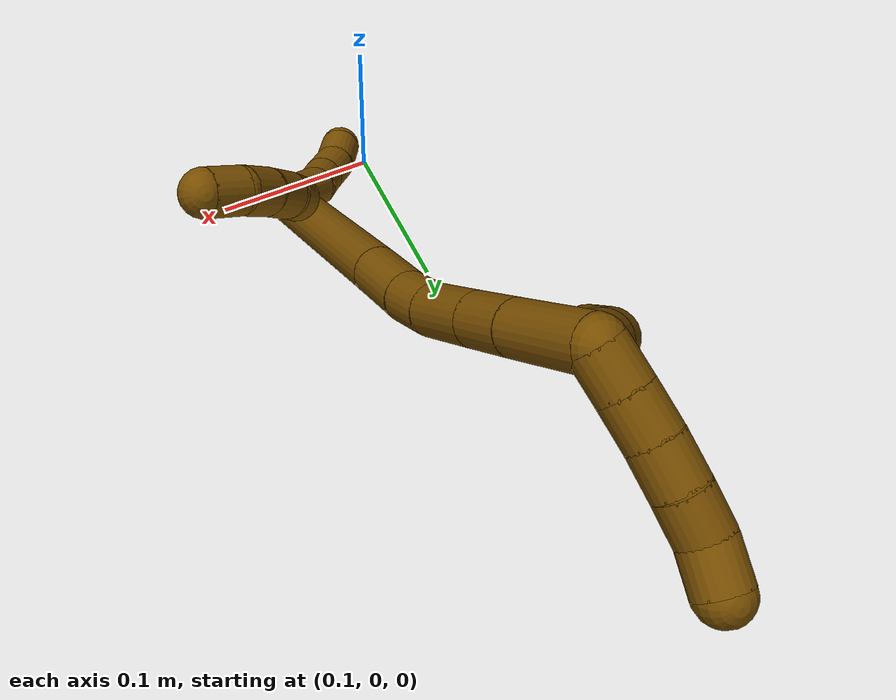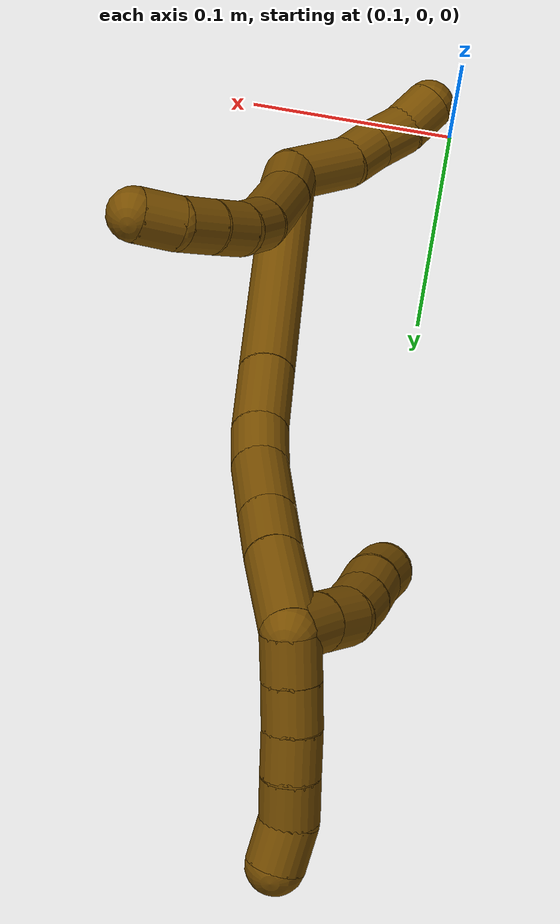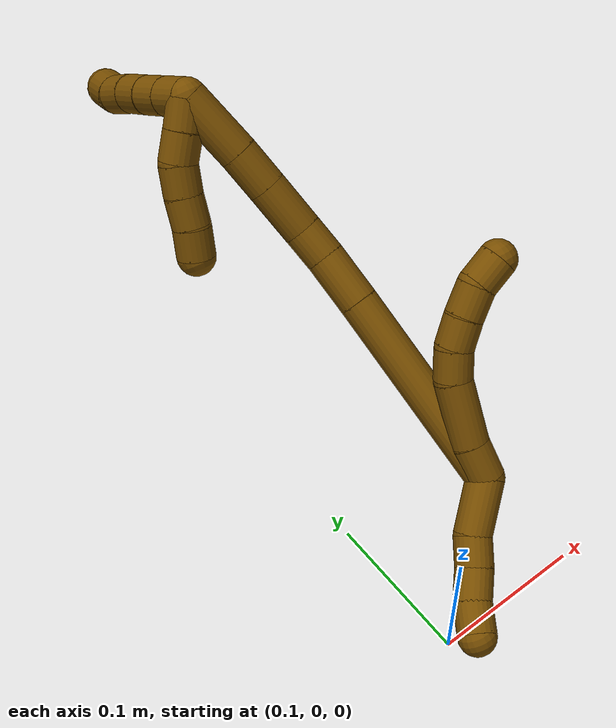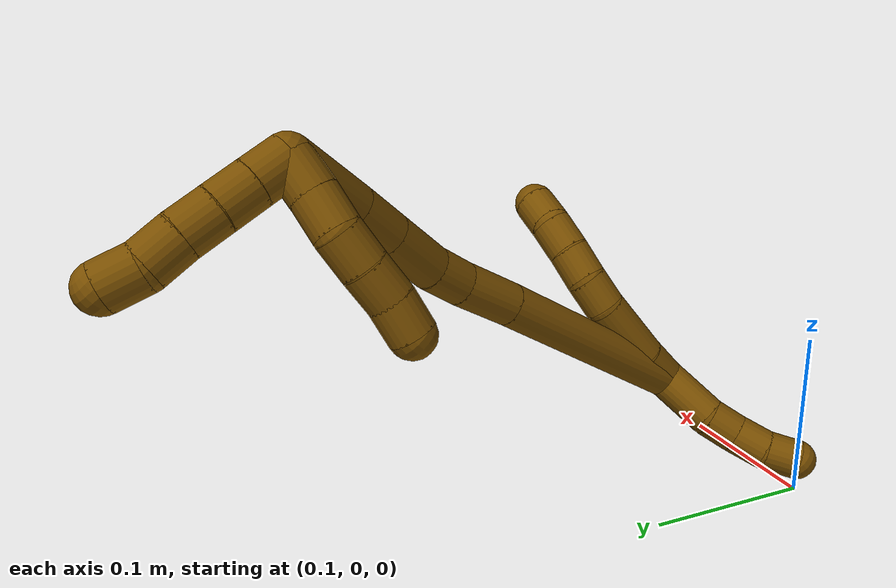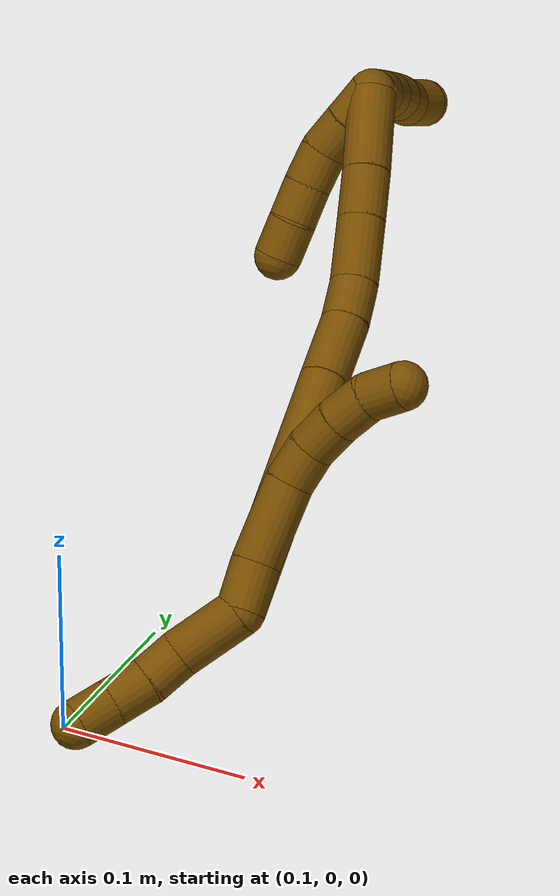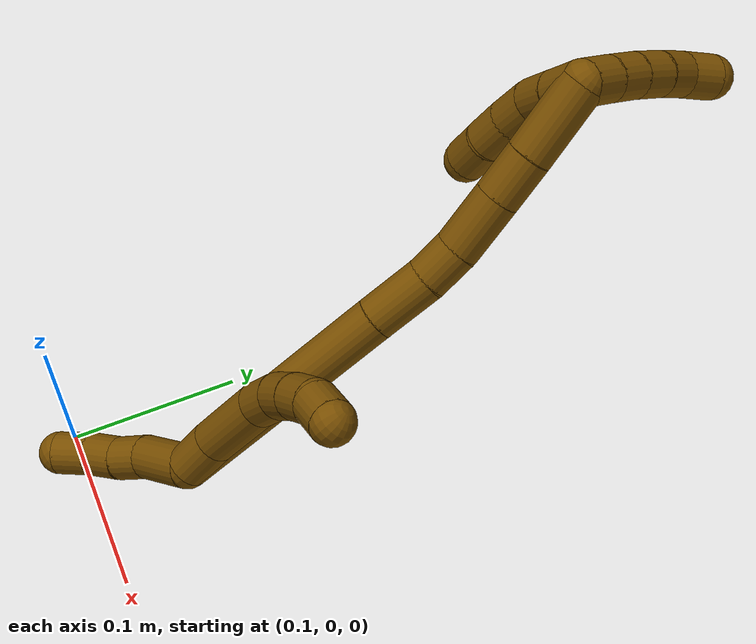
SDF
<sdf version="1.7">
 <world name="default">
  <model name="12">
   <static>0</static>
   <link name="12">
    <collision name="collision-cylinder-e_1_2_8">
     <pose>-0.000613 -6.5e-05 0.012587 0.005199 -0.048665 -0.000127</pose>
     <geometry><cylinder><radius>0.0125</radius><length>0.025204</length></cylinder></geometry>
     <surface>
      <friction><ode><mu>1.16</mu><mu2>1.16</mu2><slip1>0</slip1><slip2>0</slip2></ode></friction>
      <contact><ode><kp>1e+06</kp><kd>1</kd><max_vel>0</max_vel><min_depth>0.001</min_depth></ode></contact>
     </surface>
    </collision>
    <visual name="visual-cylinder-e_1_2_8">
     <pose>-0.000613 -6.5e-05 0.012587 0.005199 -0.048665 -0.000127</pose>
     <geometry><cylinder><radius>0.0125</radius><length>0.025204</length></cylinder></geometry>
     <material><ambient>0.466667 0.301961 0 1</ambient></material>
    </visual>
    <collision name="collision-cylinder-e_2_8_9">
     <pose>0.00088 -0.001763 0.046685 0.075729 0.097316 0.003689</pose>
     <geometry><cylinder><radius>0.0125</radius><length>0.043353</length></cylinder></geometry>
     <surface>
      <friction><ode><mu>1.16</mu><mu2>1.16</mu2><slip1>0</slip1><slip2>0</slip2></ode></friction>
      <contact><ode><kp>1e+06</kp><kd>1</kd><max_vel>0</max_vel><min_depth>0.001</min_depth></ode></contact>
     </surface>
    </collision>
    <visual name="visual-cylinder-e_2_8_9">
     <pose>0.00088 -0.001763 0.046685 0.075729 0.097316 0.003689</pose>
     <geometry><cylinder><radius>0.0125</radius><length>0.043353</length></cylinder></geometry>
     <material><ambient>0.466667 0.301961 0 1</ambient></material>
    </visual>
    <collision name="collision-cylinder-e_3_9_10">
     <pose>0.006529 -0.00516 0.077675 0.184057 0.352159 0.032838</pose>
     <geometry><cylinder><radius>0.0125</radius><length>0.020542</length></cylinder></geometry>
     <surface>
      <friction><ode><mu>1.16</mu><mu2>1.16</mu2><slip1>0</slip1><slip2>0</slip2></ode></friction>
      <contact><ode><kp>1e+06</kp><kd>1</kd><max_vel>0</max_vel><min_depth>0.001</min_depth></ode></contact>
     </surface>
    </collision>
    <visual name="visual-cylinder-e_3_9_10">
     <pose>0.006529 -0.00516 0.077675 0.184057 0.352159 0.032838</pose>
     <geometry><cylinder><radius>0.0125</radius><length>0.020542</length></cylinder></geometry>
     <material><ambient>0.466667 0.301961 0 1</ambient></material>
    </visual>
    <collision name="collision-cylinder-e_4_10_11">
     <pose>0.015863 -0.009165 0.095028 0.277187 0.615672 0.08864</pose>
     <geometry><cylinder><radius>0.0125</radius><length>0.020058</length></cylinder></geometry>
     <surface>
      <friction><ode><mu>1.16</mu><mu2>1.16</mu2><slip1>0</slip1><slip2>0</slip2></ode></friction>
      <contact><ode><kp>1e+06</kp><kd>1</kd><max_vel>0</max_vel><min_depth>0.001</min_depth></ode></contact>
     </surface>
    </collision>
    <visual name="visual-cylinder-e_4_10_11">
     <pose>0.015863 -0.009165 0.095028 0.277187 0.615672 0.08864</pose>
     <geometry><cylinder><radius>0.0125</radius><length>0.020058</length></cylinder></geometry>
     <material><ambient>0.466667 0.301961 0 1</ambient></material>
    </visual>
    <collision name="collision-cylinder-e_5_11_12">
     <pose>0.028503 -0.0133 0.110339 0.249484 0.728575 0.095553</pose>
     <geometry><cylinder><radius>0.0125</radius><length>0.02057</length></cylinder></geometry>
     <surface>
      <friction><ode><mu>1.16</mu><mu2>1.16</mu2><slip1>0</slip1><slip2>0</slip2></ode></friction>
      <contact><ode><kp>1e+06</kp><kd>1</kd><max_vel>0</max_vel><min_depth>0.001</min_depth></ode></contact>
     </surface>
    </collision>
    <visual name="visual-cylinder-e_5_11_12">
     <pose>0.028503 -0.0133 0.110339 0.249484 0.728575 0.095553</pose>
     <geometry><cylinder><radius>0.0125</radius><length>0.02057</length></cylinder></geometry>
     <material><ambient>0.466667 0.301961 0 1</ambient></material>
    </visual>
    <collision name="collision-cylinder-e_6_12_6">
     <pose>0.044268 -0.016526 0.122408 0.279957 1.07527 0.167622</pose>
     <geometry><cylinder><radius>0.0125</radius><length>0.020274</length></cylinder></geometry>
     <surface>
      <friction><ode><mu>1.16</mu><mu2>1.16</mu2><slip1>0</slip1><slip2>0</slip2></ode></friction>
      <contact><ode><kp>1e+06</kp><kd>1</kd><max_vel>0</max_vel><min_depth>0.001</min_depth></ode></contact>
     </surface>
    </collision>
    <visual name="visual-cylinder-e_6_12_6">
     <pose>0.044268 -0.016526 0.122408 0.279957 1.07527 0.167622</pose>
     <geometry><cylinder><radius>0.0125</radius><length>0.020274</length></cylinder></geometry>
     <material><ambient>0.466667 0.301961 0 1</ambient></material>
    </visual>
    <collision name="collision-cylinder-e_1_2_13">
     <pose>-0.011664 -0.001041 -0.014461 3.06971 -0.677467 -2.93817</pose>
     <geometry><cylinder><radius>0.0125</radius><length>0.037216</length></cylinder></geometry>
     <surface>
      <friction><ode><mu>1.16</mu><mu2>1.16</mu2><slip1>0</slip1><slip2>0</slip2></ode></friction>
      <contact><ode><kp>1e+06</kp><kd>1</kd><max_vel>0</max_vel><min_depth>0.001</min_depth></ode></contact>
     </surface>
    </collision>
    <visual name="visual-cylinder-e_1_2_13">
     <pose>-0.011664 -0.001041 -0.014461 3.06971 -0.677467 -2.93817</pose>
     <geometry><cylinder><radius>0.0125</radius><length>0.037216</length></cylinder></geometry>
     <material><ambient>0.466667 0.301961 0 1</ambient></material>
    </visual>
    <collision name="collision-cylinder-e_2_13_14">
     <pose>-0.027704 -0.004393 -0.037752 2.88572 -0.447099 -2.11178</pose>
     <geometry><cylinder><radius>0.0125</radius><length>0.020243</length></cylinder></geometry>
     <surface>
      <friction><ode><mu>1.16</mu><mu2>1.16</mu2><slip1>0</slip1><slip2>0</slip2></ode></friction>
      <contact><ode><kp>1e+06</kp><kd>1</kd><max_vel>0</max_vel><min_depth>0.001</min_depth></ode></contact>
     </surface>
    </collision>
    <visual name="visual-cylinder-e_2_13_14">
     <pose>-0.027704 -0.004393 -0.037752 2.88572 -0.447099 -2.11178</pose>
     <geometry><cylinder><radius>0.0125</radius><length>0.020243</length></cylinder></geometry>
     <material><ambient>0.466667 0.301961 0 1</ambient></material>
    </visual>
    <collision name="collision-cylinder-e_3_14_15">
     <pose>-0.038021 -0.009781 -0.054925 2.78814 -0.588918 -2.0772</pose>
     <geometry><cylinder><radius>0.0125</radius><length>0.021391</length></cylinder></geometry>
     <surface>
      <friction><ode><mu>1.16</mu><mu2>1.16</mu2><slip1>0</slip1><slip2>0</slip2></ode></friction>
      <contact><ode><kp>1e+06</kp><kd>1</kd><max_vel>0</max_vel><min_depth>0.001</min_depth></ode></contact>
     </surface>
    </collision>
    <visual name="visual-cylinder-e_3_14_15">
     <pose>-0.038021 -0.009781 -0.054925 2.78814 -0.588918 -2.0772</pose>
     <geometry><cylinder><radius>0.0125</radius><length>0.021391</length></cylinder></geometry>
     <material><ambient>0.466667 0.301961 0 1</ambient></material>
    </visual>
    <collision name="collision-cylinder-e_4_15_5">
     <pose>-0.048418 -0.017899 -0.071429 2.58829 -0.43501 -1.32282</pose>
     <geometry><cylinder><radius>0.0125</radius><length>0.02115</length></cylinder></geometry>
     <surface>
      <friction><ode><mu>1.16</mu><mu2>1.16</mu2><slip1>0</slip1><slip2>0</slip2></ode></friction>
      <contact><ode><kp>1e+06</kp><kd>1</kd><max_vel>0</max_vel><min_depth>0.001</min_depth></ode></contact>
     </surface>
    </collision>
    <visual name="visual-cylinder-e_4_15_5">
     <pose>-0.048418 -0.017899 -0.071429 2.58829 -0.43501 -1.32282</pose>
     <geometry><cylinder><radius>0.0125</radius><length>0.02115</length></cylinder></geometry>
     <material><ambient>0.466667 0.301961 0 1</ambient></material>
    </visual>
    <collision name="collision-cylinder-e_1_2_16">
     <pose>-0.01048 0.017856 0.064635 -0.269531 -0.155029 0.021061</pose>
     <geometry><cylinder><radius>0.0125</radius><length>0.135739</length></cylinder></geometry>
     <surface>
      <friction><ode><mu>1.16</mu><mu2>1.16</mu2><slip1>0</slip1><slip2>0</slip2></ode></friction>
      <contact><ode><kp>1e+06</kp><kd>1</kd><max_vel>0</max_vel><min_depth>0.001</min_depth></ode></contact>
     </surface>
    </collision>
    <visual name="visual-cylinder-e_1_2_16">
     <pose>-0.01048 0.017856 0.064635 -0.269531 -0.155029 0.021061</pose>
     <geometry><cylinder><radius>0.0125</radius><length>0.135739</length></cylinder></geometry>
     <material><ambient>0.466667 0.301961 0 1</ambient></material>
    </visual>
    <collision name="collision-cylinder-e_2_16_17">
     <pose>-0.02378 0.040718 0.14575 -0.294939 -0.162295 0.02416</pose>
     <geometry><cylinder><radius>0.0125</radius><length>0.034908</length></cylinder></geometry>
     <surface>
      <friction><ode><mu>1.16</mu><mu2>1.16</mu2><slip1>0</slip1><slip2>0</slip2></ode></friction>
      <contact><ode><kp>1e+06</kp><kd>1</kd><max_vel>0</max_vel><min_depth>0.001</min_depth></ode></contact>
     </surface>
    </collision>
    <visual name="visual-cylinder-e_2_16_17">
     <pose>-0.02378 0.040718 0.14575 -0.294939 -0.162295 0.02416</pose>
     <geometry><cylinder><radius>0.0125</radius><length>0.034908</length></cylinder></geometry>
     <material><ambient>0.466667 0.301961 0 1</ambient></material>
    </visual>
    <collision name="collision-cylinder-e_3_17_18">
     <pose>-0.029292 0.048044 0.172952 -0.213008 -0.240709 0.025857</pose>
     <geometry><cylinder><radius>0.0125</radius><length>0.022589</length></cylinder></geometry>
     <surface>
      <friction><ode><mu>1.16</mu><mu2>1.16</mu2><slip1>0</slip1><slip2>0</slip2></ode></friction>
      <contact><ode><kp>1e+06</kp><kd>1</kd><max_vel>0</max_vel><min_depth>0.001</min_depth></ode></contact>
     </surface>
    </collision>
    <visual name="visual-cylinder-e_3_17_18">
     <pose>-0.029292 0.048044 0.172952 -0.213008 -0.240709 0.025857</pose>
     <geometry><cylinder><radius>0.0125</radius><length>0.022589</length></cylinder></geometry>
     <material><ambient>0.466667 0.301961 0 1</ambient></material>
    </visual>
    <collision name="collision-cylinder-e_4_18_19">
     <pose>-0.036917 0.051325 0.200286 -0.05785 -0.288115 0.008394</pose>
     <geometry><cylinder><radius>0.0125</radius><length>0.034714</length></cylinder></geometry>
     <surface>
      <friction><ode><mu>1.16</mu><mu2>1.16</mu2><slip1>0</slip1><slip2>0</slip2></ode></friction>
      <contact><ode><kp>1e+06</kp><kd>1</kd><max_vel>0</max_vel><min_depth>0.001</min_depth></ode></contact>
     </surface>
    </collision>
    <visual name="visual-cylinder-e_4_18_19">
     <pose>-0.036917 0.051325 0.200286 -0.05785 -0.288115 0.008394</pose>
     <geometry><cylinder><radius>0.0125</radius><length>0.034714</length></cylinder></geometry>
     <material><ambient>0.466667 0.301961 0 1</ambient></material>
    </visual>
    <collision name="collision-cylinder-e_5_19_20">
     <pose>-0.045782 0.053007 0.229798 -0.055768 -0.29561 0.008306</pose>
     <geometry><cylinder><radius>0.0125</radius><length>0.027006</length></cylinder></geometry>
     <surface>
      <friction><ode><mu>1.16</mu><mu2>1.16</mu2><slip1>0</slip1><slip2>0</slip2></ode></friction>
      <contact><ode><kp>1e+06</kp><kd>1</kd><max_vel>0</max_vel><min_depth>0.001</min_depth></ode></contact>
     </surface>
    </collision>
    <visual name="visual-cylinder-e_5_19_20">
     <pose>-0.045782 0.053007 0.229798 -0.055768 -0.29561 0.008306</pose>
     <geometry><cylinder><radius>0.0125</radius><length>0.027006</length></cylinder></geometry>
     <material><ambient>0.466667 0.301961 0 1</ambient></material>
    </visual>
    <collision name="collision-cylinder-e_6_20_1">
     <pose>-0.057176 0.055243 0.263892 -0.071391 -0.337586 0.012171</pose>
     <geometry><cylinder><radius>0.0125</radius><length>0.045044</length></cylinder></geometry>
     <surface>
      <friction><ode><mu>1.16</mu><mu2>1.16</mu2><slip1>0</slip1><slip2>0</slip2></ode></friction>
      <contact><ode><kp>1e+06</kp><kd>1</kd><max_vel>0</max_vel><min_depth>0.001</min_depth></ode></contact>
     </surface>
    </collision>
    <visual name="visual-cylinder-e_6_20_1">
     <pose>-0.057176 0.055243 0.263892 -0.071391 -0.337586 0.012171</pose>
     <geometry><cylinder><radius>0.0125</radius><length>0.045044</length></cylinder></geometry>
     <material><ambient>0.466667 0.301961 0 1</ambient></material>
    </visual>
    <collision name="collision-cylinder-e_1_1_21">
     <pose>-0.067769 0.065929 0.287555 -1.30796 -0.318751 0.245178</pose>
     <geometry><cylinder><radius>0.0125</radius><length>0.02</length></cylinder></geometry>
     <surface>
      <friction><ode><mu>1.16</mu><mu2>1.16</mu2><slip1>0</slip1><slip2>0</slip2></ode></friction>
      <contact><ode><kp>1e+06</kp><kd>1</kd><max_vel>0</max_vel><min_depth>0.001</min_depth></ode></contact>
     </surface>
    </collision>
    <visual name="visual-cylinder-e_1_1_21">
     <pose>-0.067769 0.065929 0.287555 -1.30796 -0.318751 0.245178</pose>
     <geometry><cylinder><radius>0.0125</radius><length>0.02</length></cylinder></geometry>
     <material><ambient>0.466667 0.301961 0 1</ambient></material>
    </visual>
    <collision name="collision-cylinder-e_2_21_22">
     <pose>-0.073908 0.084331 0.292418 -1.31695 -0.305247 0.236895</pose>
     <geometry><cylinder><radius>0.0125</radius><length>0.02</length></cylinder></geometry>
     <surface>
      <friction><ode><mu>1.16</mu><mu2>1.16</mu2><slip1>0</slip1><slip2>0</slip2></ode></friction>
      <contact><ode><kp>1e+06</kp><kd>1</kd><max_vel>0</max_vel><min_depth>0.001</min_depth></ode></contact>
     </surface>
    </collision>
    <visual name="visual-cylinder-e_2_21_22">
     <pose>-0.073908 0.084331 0.292418 -1.31695 -0.305247 0.236895</pose>
     <geometry><cylinder><radius>0.0125</radius><length>0.02</length></cylinder></geometry>
     <material><ambient>0.466667 0.301961 0 1</ambient></material>
    </visual>
    <collision name="collision-cylinder-e_3_22_23">
     <pose>-0.079427 0.102969 0.297094 -1.33292 -0.254043 0.200218</pose>
     <geometry><cylinder><radius>0.0125</radius><length>0.02</length></cylinder></geometry>
     <surface>
      <friction><ode><mu>1.16</mu><mu2>1.16</mu2><slip1>0</slip1><slip2>0</slip2></ode></friction>
      <contact><ode><kp>1e+06</kp><kd>1</kd><max_vel>0</max_vel><min_depth>0.001</min_depth></ode></contact>
     </surface>
    </collision>
    <visual name="visual-cylinder-e_3_22_23">
     <pose>-0.079427 0.102969 0.297094 -1.33292 -0.254043 0.200218</pose>
     <geometry><cylinder><radius>0.0125</radius><length>0.02</length></cylinder></geometry>
     <material><ambient>0.466667 0.301961 0 1</ambient></material>
    </visual>
    <collision name="collision-cylinder-e_4_23_24">
     <pose>-0.084488 0.121923 0.30091 -1.41131 -0.257716 0.219908</pose>
     <geometry><cylinder><radius>0.0125</radius><length>0.02</length></cylinder></geometry>
     <surface>
      <friction><ode><mu>1.16</mu><mu2>1.16</mu2><slip1>0</slip1><slip2>0</slip2></ode></friction>
      <contact><ode><kp>1e+06</kp><kd>1</kd><max_vel>0</max_vel><min_depth>0.001</min_depth></ode></contact>
     </surface>
    </collision>
    <visual name="visual-cylinder-e_4_23_24">
     <pose>-0.084488 0.121923 0.30091 -1.41131 -0.257716 0.219908</pose>
     <geometry><cylinder><radius>0.0125</radius><length>0.02</length></cylinder></geometry>
     <material><ambient>0.466667 0.301961 0 1</ambient></material>
    </visual>
    <collision name="collision-cylinder-e_5_24_4">
     <pose>-0.087144 0.140909 0.305745 -1.23457 -0.010712 0.007604</pose>
     <geometry><cylinder><radius>0.0125</radius><length>0.02</length></cylinder></geometry>
     <surface>
      <friction><ode><mu>1.16</mu><mu2>1.16</mu2><slip1>0</slip1><slip2>0</slip2></ode></friction>
      <contact><ode><kp>1e+06</kp><kd>1</kd><max_vel>0</max_vel><min_depth>0.001</min_depth></ode></contact>
     </surface>
    </collision>
    <visual name="visual-cylinder-e_5_24_4">
     <pose>-0.087144 0.140909 0.305745 -1.23457 -0.010712 0.007604</pose>
     <geometry><cylinder><radius>0.0125</radius><length>0.02</length></cylinder></geometry>
     <material><ambient>0.466667 0.301961 0 1</ambient></material>
    </visual>
    <collision name="collision-cylinder-e_1_1_25">
     <pose>-0.069484 0.058444 0.276506 -2.94771 -0.506183 2.4223</pose>
     <geometry><cylinder><radius>0.0125</radius><length>0.02</length></cylinder></geometry>
     <surface>
      <friction><ode><mu>1.16</mu><mu2>1.16</mu2><slip1>0</slip1><slip2>0</slip2></ode></friction>
      <contact><ode><kp>1e+06</kp><kd>1</kd><max_vel>0</max_vel><min_depth>0.001</min_depth></ode></contact>
     </surface>
    </collision>
    <visual name="visual-cylinder-e_1_1_25">
     <pose>-0.069484 0.058444 0.276506 -2.94771 -0.506183 2.4223</pose>
     <geometry><cylinder><radius>0.0125</radius><length>0.02</length></cylinder></geometry>
     <material><ambient>0.466667 0.301961 0 1</ambient></material>
    </visual>
    <collision name="collision-cylinder-e_2_25_26">
     <pose>-0.079358 0.062219 0.259535 -2.89742 -0.526578 2.28726</pose>
     <geometry><cylinder><radius>0.0125</radius><length>0.02</length></cylinder></geometry>
     <surface>
      <friction><ode><mu>1.16</mu><mu2>1.16</mu2><slip1>0</slip1><slip2>0</slip2></ode></friction>
      <contact><ode><kp>1e+06</kp><kd>1</kd><max_vel>0</max_vel><min_depth>0.001</min_depth></ode></contact>
     </surface>
    </collision>
    <visual name="visual-cylinder-e_2_25_26">
     <pose>-0.079358 0.062219 0.259535 -2.89742 -0.526578 2.28726</pose>
     <geometry><cylinder><radius>0.0125</radius><length>0.02</length></cylinder></geometry>
     <material><ambient>0.466667 0.301961 0 1</ambient></material>
    </visual>
    <collision name="collision-cylinder-e_3_26_27">
     <pose>-0.08647 0.065902 0.241497 -2.97799 -0.210203 1.82026</pose>
     <geometry><cylinder><radius>0.0125</radius><length>0.02</length></cylinder></geometry>
     <surface>
      <friction><ode><mu>1.16</mu><mu2>1.16</mu2><slip1>0</slip1><slip2>0</slip2></ode></friction>
      <contact><ode><kp>1e+06</kp><kd>1</kd><max_vel>0</max_vel><min_depth>0.001</min_depth></ode></contact>
     </surface>
    </collision>
    <visual name="visual-cylinder-e_3_26_27">
     <pose>-0.08647 0.065902 0.241497 -2.97799 -0.210203 1.82026</pose>
     <geometry><cylinder><radius>0.0125</radius><length>0.02</length></cylinder></geometry>
     <material><ambient>0.466667 0.301961 0 1</ambient></material>
    </visual>
    <collision name="collision-cylinder-e_4_27_28">
     <pose>-0.08983 0.068841 0.222021 -3.00541 -0.127683 1.50618</pose>
     <geometry><cylinder><radius>0.0125</radius><length>0.02</length></cylinder></geometry>
     <surface>
      <friction><ode><mu>1.16</mu><mu2>1.16</mu2><slip1>0</slip1><slip2>0</slip2></ode></friction>
      <contact><ode><kp>1e+06</kp><kd>1</kd><max_vel>0</max_vel><min_depth>0.001</min_depth></ode></contact>
     </surface>
    </collision>
    <visual name="visual-cylinder-e_4_27_28">
     <pose>-0.08983 0.068841 0.222021 -3.00541 -0.127683 1.50618</pose>
     <geometry><cylinder><radius>0.0125</radius><length>0.02</length></cylinder></geometry>
     <material><ambient>0.466667 0.301961 0 1</ambient></material>
    </visual>
    <collision name="collision-cylinder-e_5_28_3">
     <pose>-0.093067 0.072686 0.202712 -2.88394 -0.197627 1.30641</pose>
     <geometry><cylinder><radius>0.0125</radius><length>0.02</length></cylinder></geometry>
     <surface>
      <friction><ode><mu>1.16</mu><mu2>1.16</mu2><slip1>0</slip1><slip2>0</slip2></ode></friction>
      <contact><ode><kp>1e+06</kp><kd>1</kd><max_vel>0</max_vel><min_depth>0.001</min_depth></ode></contact>
     </surface>
    </collision>
    <visual name="visual-cylinder-e_5_28_3">
     <pose>-0.093067 0.072686 0.202712 -2.88394 -0.197627 1.30641</pose>
     <geometry><cylinder><radius>0.0125</radius><length>0.02</length></cylinder></geometry>
     <material><ambient>0.466667 0.301961 0 1</ambient></material>
    </visual>
    <collision name="collision-sphere-3">
     <pose>-0.09503 0.075185 0.193231 0 -0 0</pose>
     <geometry><sphere><radius>0.0125</radius></sphere></geometry>
     <surface>
      <friction><ode><mu>1.16</mu><mu2>1.16</mu2><slip1>0</slip1><slip2>0</slip2></ode></friction>
      <contact><ode><kp>1e+06</kp><kd>1</kd><max_vel>0</max_vel><min_depth>0.001</min_depth></ode></contact>
     </surface>
    </collision>
    <visual name="visual-sphere-3">
     <pose>-0.09503 0.075185 0.193231 0 -0 0</pose>
     <geometry><sphere><radius>0.0125</radius></sphere></geometry>
     <material><ambient>0.466667 0.301961 0 1</ambient></material>
    </visual>
    <collision name="collision-sphere-28">
     <pose>-0.091103 0.070188 0.212194 0 -0 0</pose>
     <geometry><sphere><radius>0.0125</radius></sphere></geometry>
     <surface>
      <friction><ode><mu>1.16</mu><mu2>1.16</mu2><slip1>0</slip1><slip2>0</slip2></ode></friction>
      <contact><ode><kp>1e+06</kp><kd>1</kd><max_vel>0</max_vel><min_depth>0.001</min_depth></ode></contact>
     </surface>
    </collision>
    <visual name="visual-sphere-28">
     <pose>-0.091103 0.070188 0.212194 0 -0 0</pose>
     <geometry><sphere><radius>0.0125</radius></sphere></geometry>
     <material><ambient>0.466667 0.301961 0 1</ambient></material>
    </visual>
    <collision name="collision-sphere-27">
     <pose>-0.088557 0.067495 0.231847 0 -0 0</pose>
     <geometry><sphere><radius>0.0125</radius></sphere></geometry>
     <surface>
      <friction><ode><mu>1.16</mu><mu2>1.16</mu2><slip1>0</slip1><slip2>0</slip2></ode></friction>
      <contact><ode><kp>1e+06</kp><kd>1</kd><max_vel>0</max_vel><min_depth>0.001</min_depth></ode></contact>
     </surface>
    </collision>
    <visual name="visual-sphere-27">
     <pose>-0.088557 0.067495 0.231847 0 -0 0</pose>
     <geometry><sphere><radius>0.0125</radius></sphere></geometry>
     <material><ambient>0.466667 0.301961 0 1</ambient></material>
    </visual>
    <collision name="collision-sphere-26">
     <pose>-0.084384 0.064309 0.251146 0 -0 0</pose>
     <geometry><sphere><radius>0.0125</radius></sphere></geometry>
     <surface>
      <friction><ode><mu>1.16</mu><mu2>1.16</mu2><slip1>0</slip1><slip2>0</slip2></ode></friction>
      <contact><ode><kp>1e+06</kp><kd>1</kd><max_vel>0</max_vel><min_depth>0.001</min_depth></ode></contact>
     </surface>
    </collision>
    <visual name="visual-sphere-26">
     <pose>-0.084384 0.064309 0.251146 0 -0 0</pose>
     <geometry><sphere><radius>0.0125</radius></sphere></geometry>
     <material><ambient>0.466667 0.301961 0 1</ambient></material>
    </visual>
    <collision name="collision-sphere-25">
     <pose>-0.074332 0.060129 0.267924 0 -0 0</pose>
     <geometry><sphere><radius>0.0125</radius></sphere></geometry>
     <surface>
      <friction><ode><mu>1.16</mu><mu2>1.16</mu2><slip1>0</slip1><slip2>0</slip2></ode></friction>
      <contact><ode><kp>1e+06</kp><kd>1</kd><max_vel>0</max_vel><min_depth>0.001</min_depth></ode></contact>
     </surface>
    </collision>
    <visual name="visual-sphere-25">
     <pose>-0.074332 0.060129 0.267924 0 -0 0</pose>
     <geometry><sphere><radius>0.0125</radius></sphere></geometry>
     <material><ambient>0.466667 0.301961 0 1</ambient></material>
    </visual>
    <collision name="collision-sphere-4">
     <pose>-0.087251 0.150349 0.309044 0 -0 0</pose>
     <geometry><sphere><radius>0.0125</radius></sphere></geometry>
     <surface>
      <friction><ode><mu>1.16</mu><mu2>1.16</mu2><slip1>0</slip1><slip2>0</slip2></ode></friction>
      <contact><ode><kp>1e+06</kp><kd>1</kd><max_vel>0</max_vel><min_depth>0.001</min_depth></ode></contact>
     </surface>
    </collision>
    <visual name="visual-sphere-4">
     <pose>-0.087251 0.150349 0.309044 0 -0 0</pose>
     <geometry><sphere><radius>0.0125</radius></sphere></geometry>
     <material><ambient>0.466667 0.301961 0 1</ambient></material>
    </visual>
    <collision name="collision-sphere-24">
     <pose>-0.087037 0.13147 0.302446 0 -0 0</pose>
     <geometry><sphere><radius>0.0125</radius></sphere></geometry>
     <surface>
      <friction><ode><mu>1.16</mu><mu2>1.16</mu2><slip1>0</slip1><slip2>0</slip2></ode></friction>
      <contact><ode><kp>1e+06</kp><kd>1</kd><max_vel>0</max_vel><min_depth>0.001</min_depth></ode></contact>
     </surface>
    </collision>
    <visual name="visual-sphere-24">
     <pose>-0.087037 0.13147 0.302446 0 -0 0</pose>
     <geometry><sphere><radius>0.0125</radius></sphere></geometry>
     <material><ambient>0.466667 0.301961 0 1</ambient></material>
    </visual>
    <collision name="collision-sphere-23">
     <pose>-0.08194 0.112376 0.299375 0 -0 0</pose>
     <geometry><sphere><radius>0.0125</radius></sphere></geometry>
     <surface>
      <friction><ode><mu>1.16</mu><mu2>1.16</mu2><slip1>0</slip1><slip2>0</slip2></ode></friction>
      <contact><ode><kp>1e+06</kp><kd>1</kd><max_vel>0</max_vel><min_depth>0.001</min_depth></ode></contact>
     </surface>
    </collision>
    <visual name="visual-sphere-23">
     <pose>-0.08194 0.112376 0.299375 0 -0 0</pose>
     <geometry><sphere><radius>0.0125</radius></sphere></geometry>
     <material><ambient>0.466667 0.301961 0 1</ambient></material>
    </visual>
    <collision name="collision-sphere-22">
     <pose>-0.076913 0.093563 0.294813 0 -0 0</pose>
     <geometry><sphere><radius>0.0125</radius></sphere></geometry>
     <surface>
      <friction><ode><mu>1.16</mu><mu2>1.16</mu2><slip1>0</slip1><slip2>0</slip2></ode></friction>
      <contact><ode><kp>1e+06</kp><kd>1</kd><max_vel>0</max_vel><min_depth>0.001</min_depth></ode></contact>
     </surface>
    </collision>
    <visual name="visual-sphere-22">
     <pose>-0.076913 0.093563 0.294813 0 -0 0</pose>
     <geometry><sphere><radius>0.0125</radius></sphere></geometry>
     <material><ambient>0.466667 0.301961 0 1</ambient></material>
    </visual>
    <collision name="collision-sphere-21">
     <pose>-0.070903 0.075099 0.290023 0 -0 0</pose>
     <geometry><sphere><radius>0.0125</radius></sphere></geometry>
     <surface>
      <friction><ode><mu>1.16</mu><mu2>1.16</mu2><slip1>0</slip1><slip2>0</slip2></ode></friction>
      <contact><ode><kp>1e+06</kp><kd>1</kd><max_vel>0</max_vel><min_depth>0.001</min_depth></ode></contact>
     </surface>
    </collision>
    <visual name="visual-sphere-21">
     <pose>-0.070903 0.075099 0.290023 0 -0 0</pose>
     <geometry><sphere><radius>0.0125</radius></sphere></geometry>
     <material><ambient>0.466667 0.301961 0 1</ambient></material>
    </visual>
    <collision name="collision-sphere-1">
     <pose>-0.064635 0.056758 0.285088 0 -0 0</pose>
     <geometry><sphere><radius>0.0125</radius></sphere></geometry>
     <surface>
      <friction><ode><mu>1.16</mu><mu2>1.16</mu2><slip1>0</slip1><slip2>0</slip2></ode></friction>
      <contact><ode><kp>1e+06</kp><kd>1</kd><max_vel>0</max_vel><min_depth>0.001</min_depth></ode></contact>
     </surface>
    </collision>
    <visual name="visual-sphere-1">
     <pose>-0.064635 0.056758 0.285088 0 -0 0</pose>
     <geometry><sphere><radius>0.0125</radius></sphere></geometry>
     <material><ambient>0.466667 0.301961 0 1</ambient></material>
    </visual>
    <collision name="collision-sphere-12">
     <pose>0.035351 -0.015195 0.117776 0 -0 0</pose>
     <geometry><sphere><radius>0.0125</radius></sphere></geometry>
     <surface>
      <friction><ode><mu>1.16</mu><mu2>1.16</mu2><slip1>0</slip1><slip2>0</slip2></ode></friction>
      <contact><ode><kp>1e+06</kp><kd>1</kd><max_vel>0</max_vel><min_depth>0.001</min_depth></ode></contact>
     </surface>
    </collision>
    <visual name="visual-sphere-12">
     <pose>0.035351 -0.015195 0.117776 0 -0 0</pose>
     <geometry><sphere><radius>0.0125</radius></sphere></geometry>
     <material><ambient>0.466667 0.301961 0 1</ambient></material>
    </visual>
    <collision name="collision-sphere-11">
     <pose>0.021655 -0.011405 0.102903 0 -0 0</pose>
     <geometry><sphere><radius>0.0125</radius></sphere></geometry>
     <surface>
      <friction><ode><mu>1.16</mu><mu2>1.16</mu2><slip1>0</slip1><slip2>0</slip2></ode></friction>
      <contact><ode><kp>1e+06</kp><kd>1</kd><max_vel>0</max_vel><min_depth>0.001</min_depth></ode></contact>
     </surface>
    </collision>
    <visual name="visual-sphere-11">
     <pose>0.021655 -0.011405 0.102903 0 -0 0</pose>
     <geometry><sphere><radius>0.0125</radius></sphere></geometry>
     <material><ambient>0.466667 0.301961 0 1</ambient></material>
    </visual>
    <collision name="collision-sphere-10">
     <pose>0.010072 -0.006924 0.087153 0 -0 0</pose>
     <geometry><sphere><radius>0.0125</radius></sphere></geometry>
     <surface>
      <friction><ode><mu>1.16</mu><mu2>1.16</mu2><slip1>0</slip1><slip2>0</slip2></ode></friction>
      <contact><ode><kp>1e+06</kp><kd>1</kd><max_vel>0</max_vel><min_depth>0.001</min_depth></ode></contact>
     </surface>
    </collision>
    <visual name="visual-sphere-10">
     <pose>0.010072 -0.006924 0.087153 0 -0 0</pose>
     <geometry><sphere><radius>0.0125</radius></sphere></geometry>
     <material><ambient>0.466667 0.301961 0 1</ambient></material>
    </visual>
    <collision name="collision-sphere-9">
     <pose>0.002986 -0.003395 0.068197 0 -0 0</pose>
     <geometry><sphere><radius>0.0125</radius></sphere></geometry>
     <surface>
      <friction><ode><mu>1.16</mu><mu2>1.16</mu2><slip1>0</slip1><slip2>0</slip2></ode></friction>
      <contact><ode><kp>1e+06</kp><kd>1</kd><max_vel>0</max_vel><min_depth>0.001</min_depth></ode></contact>
     </surface>
    </collision>
    <visual name="visual-sphere-9">
     <pose>0.002986 -0.003395 0.068197 0 -0 0</pose>
     <geometry><sphere><radius>0.0125</radius></sphere></geometry>
     <material><ambient>0.466667 0.301961 0 1</ambient></material>
    </visual>
    <collision name="collision-sphere-2">
     <geometry><sphere><radius>0.0125</radius></sphere></geometry>
     <surface>
      <friction><ode><mu>1.16</mu><mu2>1.16</mu2><slip1>0</slip1><slip2>0</slip2></ode></friction>
      <contact><ode><kp>1e+06</kp><kd>1</kd><max_vel>0</max_vel><min_depth>0.001</min_depth></ode></contact>
     </surface>
    </collision>
    <visual name="visual-sphere-2">
     <geometry><sphere><radius>0.0125</radius></sphere></geometry>
     <material><ambient>0.466667 0.301961 0 1</ambient></material>
    </visual>
    <collision name="collision-sphere-19">
     <pose>-0.041849 0.052287 0.2169 0 -0 0</pose>
     <geometry><sphere><radius>0.0125</radius></sphere></geometry>
     <surface>
      <friction><ode><mu>1.16</mu><mu2>1.16</mu2><slip1>0</slip1><slip2>0</slip2></ode></friction>
      <contact><ode><kp>1e+06</kp><kd>1</kd><max_vel>0</max_vel><min_depth>0.001</min_depth></ode></contact>
     </surface>
    </collision>
    <visual name="visual-sphere-19">
     <pose>-0.041849 0.052287 0.2169 0 -0 0</pose>
     <geometry><sphere><radius>0.0125</radius></sphere></geometry>
     <material><ambient>0.466667 0.301961 0 1</ambient></material>
    </visual>
    <collision name="collision-sphere-8">
     <pose>-0.001226 -0.000131 0.025173 0 -0 0</pose>
     <geometry><sphere><radius>0.0125</radius></sphere></geometry>
     <surface>
      <friction><ode><mu>1.16</mu><mu2>1.16</mu2><slip1>0</slip1><slip2>0</slip2></ode></friction>
      <contact><ode><kp>1e+06</kp><kd>1</kd><max_vel>0</max_vel><min_depth>0.001</min_depth></ode></contact>
     </surface>
    </collision>
    <visual name="visual-sphere-8">
     <pose>-0.001226 -0.000131 0.025173 0 -0 0</pose>
     <geometry><sphere><radius>0.0125</radius></sphere></geometry>
     <material><ambient>0.466667 0.301961 0 1</ambient></material>
    </visual>
    <collision name="collision-sphere-6">
     <pose>0.053186 -0.017858 0.12704 0 -0 0</pose>
     <geometry><sphere><radius>0.0125</radius></sphere></geometry>
     <surface>
      <friction><ode><mu>1.16</mu><mu2>1.16</mu2><slip1>0</slip1><slip2>0</slip2></ode></friction>
      <contact><ode><kp>1e+06</kp><kd>1</kd><max_vel>0</max_vel><min_depth>0.001</min_depth></ode></contact>
     </surface>
    </collision>
    <visual name="visual-sphere-6">
     <pose>0.053186 -0.017858 0.12704 0 -0 0</pose>
     <geometry><sphere><radius>0.0125</radius></sphere></geometry>
     <material><ambient>0.466667 0.301961 0 1</ambient></material>
    </visual>
    <collision name="collision-sphere-13">
     <pose>-0.023328 -0.002083 -0.028922 0 -0 0</pose>
     <geometry><sphere><radius>0.0125</radius></sphere></geometry>
     <surface>
      <friction><ode><mu>1.16</mu><mu2>1.16</mu2><slip1>0</slip1><slip2>0</slip2></ode></friction>
      <contact><ode><kp>1e+06</kp><kd>1</kd><max_vel>0</max_vel><min_depth>0.001</min_depth></ode></contact>
     </surface>
    </collision>
    <visual name="visual-sphere-13">
     <pose>-0.023328 -0.002083 -0.028922 0 -0 0</pose>
     <geometry><sphere><radius>0.0125</radius></sphere></geometry>
     <material><ambient>0.466667 0.301961 0 1</ambient></material>
    </visual>
    <collision name="collision-sphere-14">
     <pose>-0.03208 -0.006702 -0.046581 0 -0 0</pose>
     <geometry><sphere><radius>0.0125</radius></sphere></geometry>
     <surface>
      <friction><ode><mu>1.16</mu><mu2>1.16</mu2><slip1>0</slip1><slip2>0</slip2></ode></friction>
      <contact><ode><kp>1e+06</kp><kd>1</kd><max_vel>0</max_vel><min_depth>0.001</min_depth></ode></contact>
     </surface>
    </collision>
    <visual name="visual-sphere-14">
     <pose>-0.03208 -0.006702 -0.046581 0 -0 0</pose>
     <geometry><sphere><radius>0.0125</radius></sphere></geometry>
     <material><ambient>0.466667 0.301961 0 1</ambient></material>
    </visual>
    <collision name="collision-sphere-15">
     <pose>-0.043962 -0.012859 -0.063269 0 -0 0</pose>
     <geometry><sphere><radius>0.0125</radius></sphere></geometry>
     <surface>
      <friction><ode><mu>1.16</mu><mu2>1.16</mu2><slip1>0</slip1><slip2>0</slip2></ode></friction>
      <contact><ode><kp>1e+06</kp><kd>1</kd><max_vel>0</max_vel><min_depth>0.001</min_depth></ode></contact>
     </surface>
    </collision>
    <visual name="visual-sphere-15">
     <pose>-0.043962 -0.012859 -0.063269 0 -0 0</pose>
     <geometry><sphere><radius>0.0125</radius></sphere></geometry>
     <material><ambient>0.466667 0.301961 0 1</ambient></material>
    </visual>
    <collision name="collision-sphere-5">
     <pose>-0.052875 -0.022938 -0.079588 0 -0 0</pose>
     <geometry><sphere><radius>0.0125</radius></sphere></geometry>
     <surface>
      <friction><ode><mu>1.16</mu><mu2>1.16</mu2><slip1>0</slip1><slip2>0</slip2></ode></friction>
      <contact><ode><kp>1e+06</kp><kd>1</kd><max_vel>0</max_vel><min_depth>0.001</min_depth></ode></contact>
     </surface>
    </collision>
    <visual name="visual-sphere-5">
     <pose>-0.052875 -0.022938 -0.079588 0 -0 0</pose>
     <geometry><sphere><radius>0.0125</radius></sphere></geometry>
     <material><ambient>0.466667 0.301961 0 1</ambient></material>
    </visual>
    <collision name="collision-sphere-16">
     <pose>-0.020959 0.035711 0.12927 0 -0 0</pose>
     <geometry><sphere><radius>0.0125</radius></sphere></geometry>
     <surface>
      <friction><ode><mu>1.16</mu><mu2>1.16</mu2><slip1>0</slip1><slip2>0</slip2></ode></friction>
      <contact><ode><kp>1e+06</kp><kd>1</kd><max_vel>0</max_vel><min_depth>0.001</min_depth></ode></contact>
     </surface>
    </collision>
    <visual name="visual-sphere-16">
     <pose>-0.020959 0.035711 0.12927 0 -0 0</pose>
     <geometry><sphere><radius>0.0125</radius></sphere></geometry>
     <material><ambient>0.466667 0.301961 0 1</ambient></material>
    </visual>
    <collision name="collision-sphere-17">
     <pose>-0.0266 0.045725 0.162231 0 -0 0</pose>
     <geometry><sphere><radius>0.0125</radius></sphere></geometry>
     <surface>
      <friction><ode><mu>1.16</mu><mu2>1.16</mu2><slip1>0</slip1><slip2>0</slip2></ode></friction>
      <contact><ode><kp>1e+06</kp><kd>1</kd><max_vel>0</max_vel><min_depth>0.001</min_depth></ode></contact>
     </surface>
    </collision>
    <visual name="visual-sphere-17">
     <pose>-0.0266 0.045725 0.162231 0 -0 0</pose>
     <geometry><sphere><radius>0.0125</radius></sphere></geometry>
     <material><ambient>0.466667 0.301961 0 1</ambient></material>
    </visual>
    <collision name="collision-sphere-18">
     <pose>-0.031985 0.050362 0.183673 0 -0 0</pose>
     <geometry><sphere><radius>0.0125</radius></sphere></geometry>
     <surface>
      <friction><ode><mu>1.16</mu><mu2>1.16</mu2><slip1>0</slip1><slip2>0</slip2></ode></friction>
      <contact><ode><kp>1e+06</kp><kd>1</kd><max_vel>0</max_vel><min_depth>0.001</min_depth></ode></contact>
     </surface>
    </collision>
    <visual name="visual-sphere-18">
     <pose>-0.031985 0.050362 0.183673 0 -0 0</pose>
     <geometry><sphere><radius>0.0125</radius></sphere></geometry>
     <material><ambient>0.466667 0.301961 0 1</ambient></material>
    </visual>
    <collision name="collision-sphere-20">
     <pose>-0.049716 0.053727 0.242695 0 -0 0</pose>
     <geometry><sphere><radius>0.0125</radius></sphere></geometry>
     <surface>
      <friction><ode><mu>1.16</mu><mu2>1.16</mu2><slip1>0</slip1><slip2>0</slip2></ode></friction>
      <contact><ode><kp>1e+06</kp><kd>1</kd><max_vel>0</max_vel><min_depth>0.001</min_depth></ode></contact>
     </surface>
    </collision>
    <visual name="visual-sphere-20">
     <pose>-0.049716 0.053727 0.242695 0 -0 0</pose>
     <geometry><sphere><radius>0.0125</radius></sphere></geometry>
     <material><ambient>0.466667 0.301961 0 1</ambient></material>
    </visual>
    <inertial>
     <pose>-0.033467 0.034431 0.137519 0 -0 0</pose>
     <mass>0.75</mass>
     <inertia><ixx>0.000247</ixx><ixy>0</ixy><ixz>0</ixz><iyy>0.000276</iyy><iyz>0</iyz><izz>2e-06</izz></inertia>
    </inertial>
   </link>
   <pose>0.172016 0.052636 0.058259 -0.738724 -0.050624 -0.127079</pose>
  </model>
 </world>
</sdf>
